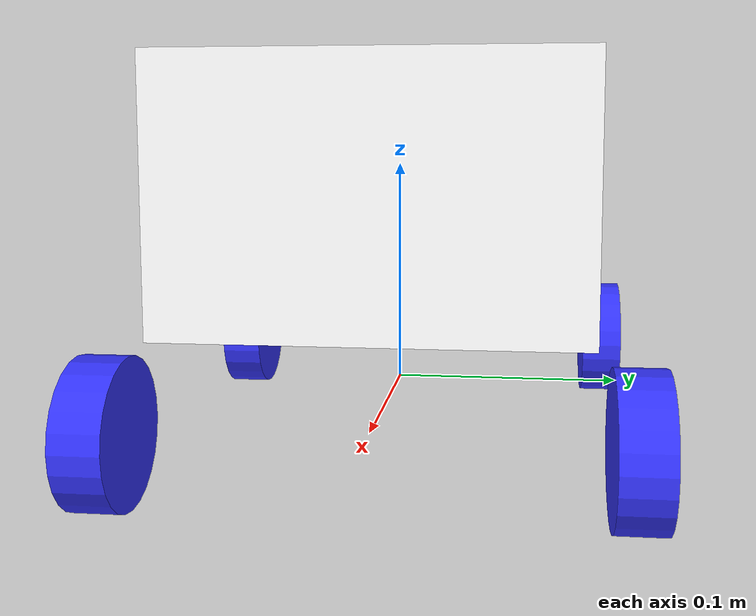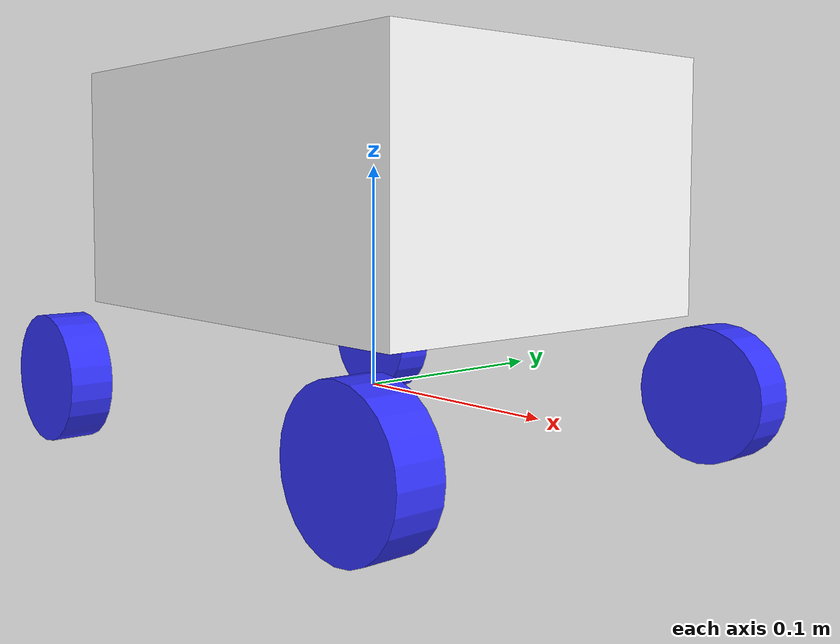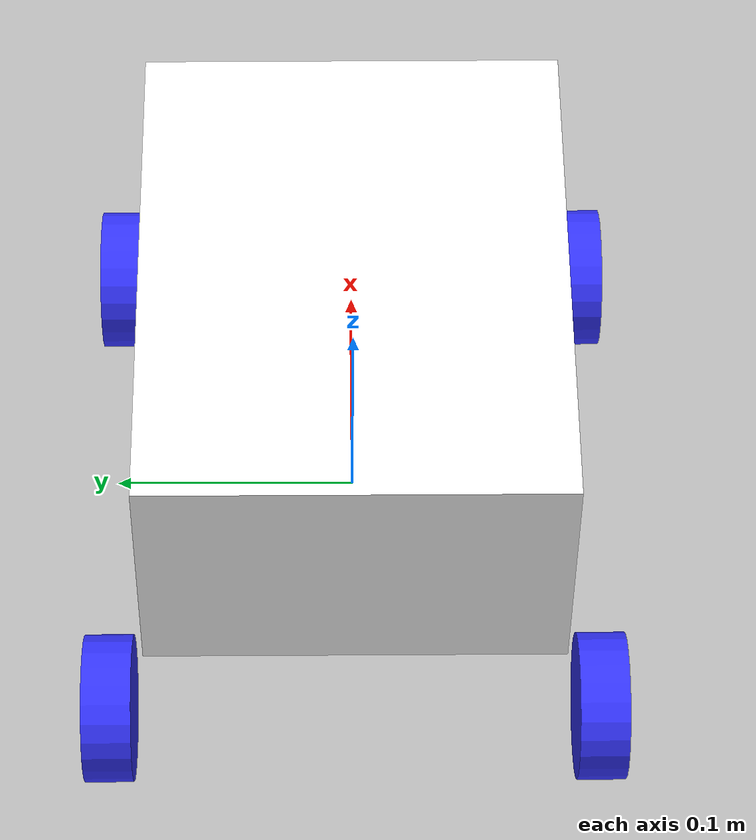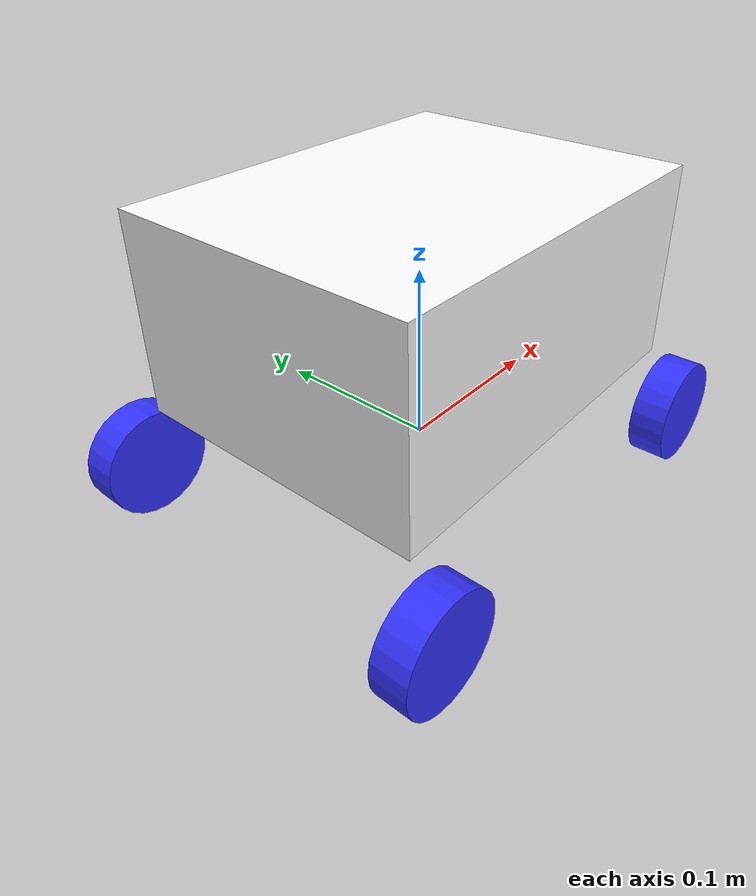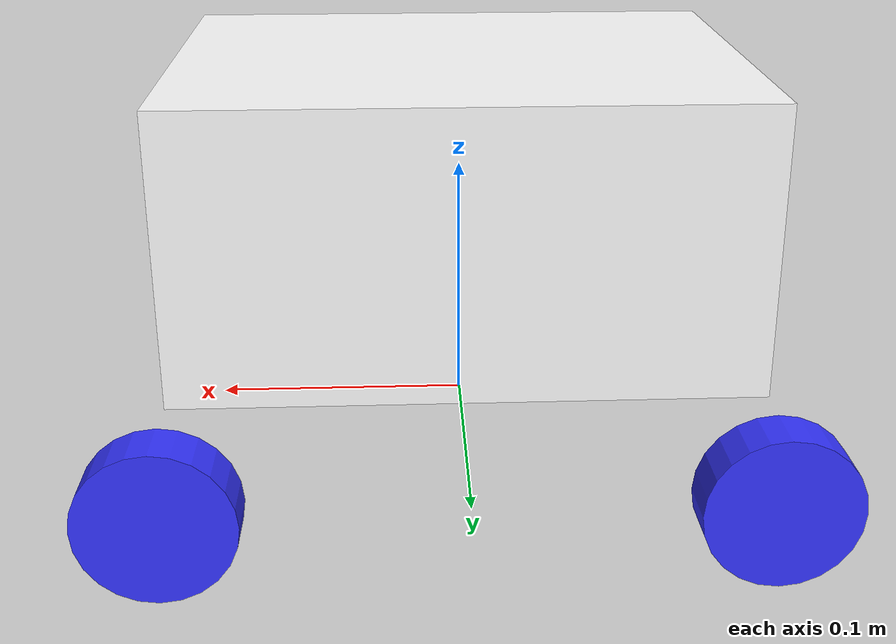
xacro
<?xml version="1.0"?>
<robot xmlns:xacro="http://www.ros.org/wiki/xacro">

    <xacro:include filename="inertial_macros.xacro"/>

    <material name="white">
        <color rgba="1 1 1 1"/>
    </material>

    <material name="orange">
        <color rgba="1 0.3 0.1 1"/>
    </material>

    <material name="blue">
        <color rgba="0.2 0.2 1 1"/>
    </material>

    <material name="black">
        <color rgba="0 0 0 1"/>
    </material>

    <material name="red">
        <color rgba="1 0 0 1"/>
    </material>
    <!-- BASE LINK-->

    <link name="base_link"/>

    <joint name="chassis_joint" type="fixed">
        <parent link="base_link"/>
        <child link="chassis"/>
        <origin xyz="-0.11 0.0 0.0"/>
    </joint>

    <!-- CHASSIS LINK-->

    <link name="chassis">
        <visual>
            <origin xyz="0.11 0 0.090"/>
            <geometry>
                <box size="0.22 0.17 0.11"/>
            </geometry>
            <material name="white"/>
        </visual>
        <collision>
            <origin xyz="0.11 0 0.090"/>
            <geometry>
                <box size="0.22 0.17 0.11"/>
            </geometry>
        </collision>
        <xacro:inertial_box mass="0.5" x="0.22" y="0.17" z="0.11">
        <origin xyz="0.11 0 0.090" rpy="0 0 0" />
        </xacro:inertial_box>
    </link>

    <gazebo reference="chassis">
        <material>Gazebo/White</material>
    </gazebo>

    <!-- LEFT WHEEL LINK-->

                <!-- FRONT -->

    <joint name="front_left_wheel_joint" type="continuous">
        <parent link="base_link"/>
        <child link="front_left_wheel"/>
        <origin xyz="0.1125 0.1 0" rpy="-${pi/2} 0 0"/>
        <axis xyz="0.0 0.0 1.0"/>
    </joint>

    <link name="front_left_wheel">
    <visual>
        <geometry>
            <cylinder radius="0.03" length="0.02"/>
        </geometry>
        <material name="blue"/>
    </visual>
    <collision>
        <geometry>
            <sphere radius="0.03"/>
        </geometry>
    </collision>
    <xacro:inertial_cylinder mass="0.1" length="0.02" radius="0.03">
        <origin xyz="0 0 0" rpy="0 0 0"/>
    </xacro:inertial_cylinder>
    </link>

    <gazebo reference="front_left_wheel">
        <material>Gazebo/Blue</material>
    </gazebo>

                <!-- BACK -->

    <joint name="back_left_wheel_joint" type="continuous">
        <parent link="base_link"/>
        <child link="back_left_wheel"/>
        <origin xyz="-0.1125 0.1 0" rpy="-${pi/2} 0 0"/>
        <axis xyz="0.0 0.0 1.0"/>
    </joint>

    <link name="back_left_wheel">
    <visual>
        <geometry>
            <cylinder radius="0.03" length="0.02"/>
        </geometry>
        <material name="blue"/>
    </visual>
    <collision>
        <geometry>
            <sphere radius="0.03"/>
        </geometry>
    </collision>
    <xacro:inertial_cylinder mass="0.1" length="0.02" radius="0.03">
        <origin xyz="0 0 0" rpy="0 0 0"/>
    </xacro:inertial_cylinder>
    </link>

    <gazebo reference="back_left_wheel">
        <material>Gazebo/Blue</material>
    </gazebo>

    <!-- RIGHT WHEEL LINK-->

            <!--FRONT-->
    <joint name="front_right_wheel_joint" type="continuous">
        <parent link="base_link"/>
        <child link="front_right_wheel"/>
        <origin xyz="0.1125 -0.1 0" rpy="${pi/2} 0 0"/>
        <axis xyz="0.0 0.0 -1.0"/>
    </joint>

    <link name="front_right_wheel">
    <visual>
        <geometry>
            <cylinder radius="0.03" length="0.02"/>
        </geometry>
        <material name="blue"/>
    </visual>
    <collision>
        <geometry>
            <sphere radius="0.03"/>
        </geometry>
    </collision>
    <xacro:inertial_cylinder mass="0.1" length="0.02" radius="0.03">
        <origin xyz="0 0 0" rpy="0 0 0"/>
    </xacro:inertial_cylinder>
    </link>
    <gazebo reference="front_right_wheel">
        <material>Gazebo/Blue</material>
    </gazebo>

            <!--BACK-->
    <joint name="back_right_wheel_joint" type="continuous">
        <parent link="base_link"/>
        <child link="back_right_wheel"/>
        <origin xyz="-0.1125 -0.1 0" rpy="${pi/2} 0 0"/>
        <axis xyz="0.0 0.0 -1.0"/>
    </joint>

    <link name="back_right_wheel">
    <visual>
        <geometry>
            <cylinder radius="0.03" length="0.02"/>
        </geometry>
        <material name="blue"/>
    </visual>
    <collision>
        <geometry>
            <sphere radius="0.03"/>
        </geometry>
    </collision>
    <xacro:inertial_cylinder mass="0.1" length="0.02" radius="0.03">
        <origin xyz="0 0 0" rpy="0 0 0"/>
    </xacro:inertial_cylinder>
    </link>
    <gazebo reference="back_right_wheel">
        <material>Gazebo/Blue</material>
    </gazebo>
</robot>
